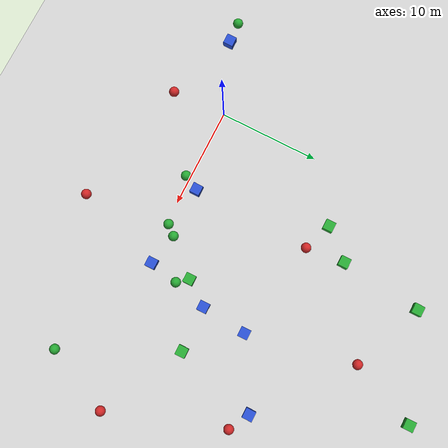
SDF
<sdf version="1.6">
 <world name="default">
  <light name="sun" type="directional">
   <pose>0 0 10 0 -0 0</pose>
   <diffuse>0.8 0.8 0.8 1</diffuse>
   <specular>0.1 0.1 0.1 1</specular>
   <attenuation>
    <range>1000</range>
    <constant>0.9</constant>
    <linear>0.01</linear>
    <quadratic>0.001</quadratic>
   </attenuation>
   <direction>-0.5 0.5 -1</direction>
  </light>
  <model name="ground_plane">
   <static>1</static>
   <link name="link">
    <collision name="collision">
     <geometry><plane><normal>0 0 1</normal><size>100 100</size></plane></geometry>
     <surface><friction><ode><mu>100</mu><mu2>50</mu2></ode></friction></surface>
    </collision>
    <visual name="visual">
     <cast_shadows>0</cast_shadows>
     <geometry><plane><normal>0 0 1</normal><size>100 100</size></plane></geometry>
     <material>
      <script><uri>file://media/materials/scripts/gazebo.material</uri><name>Gazebo/Grey</name></script>
     </material>
    </visual>
   </link>
  </model>
  <model name="unit_sphere_red_6">
   <pose>8.32090848177 13.1618066912 0.5 0 -0 0</pose>
   <link name="link">
    <inertial>
     <mass>1</mass>
     <inertia><ixx>0.1</ixx><ixy>0</ixy><ixz>0</ixz><iyy>0.1</iyy><iyz>0</iyz><izz>0.1</izz></inertia>
    </inertial>
    <collision name="collision"><geometry><sphere><radius>0.5</radius></sphere></geometry></collision>
    <visual name="visual">
     <geometry><sphere><radius>0.5</radius></sphere></geometry>
     <material>
      <script><name>Gazebo/Red</name><uri>file://media/materials/scripts/gazebo.material</uri></script>
     </material>
    </visual>
   </link>
  </model>
  <model name="unit_sphere_red_5">
   <pose>26.724746386 14.2678005844 0.5 0 -0 0</pose>
   <link name="link">
    <inertial>
     <mass>1</mass>
     <inertia><ixx>0.1</ixx><ixy>0</ixy><ixz>0</ixz><iyy>0.1</iyy><iyz>0</iyz><izz>0.1</izz></inertia>
    </inertial>
    <collision name="collision"><geometry><sphere><radius>0.5</radius></sphere></geometry></collision>
    <visual name="visual">
     <geometry><sphere><radius>0.5</radius></sphere></geometry>
     <material>
      <script><name>Gazebo/Red</name><uri>file://media/materials/scripts/gazebo.material</uri></script>
     </material>
    </visual>
   </link>
  </model>
  <model name="unit_sphere_red_4">
   <pose>16.0062812353 22.3296054313 0.5 0 -0 0</pose>
   <link name="link">
    <inertial>
     <mass>1</mass>
     <inertia><ixx>0.1</ixx><ixy>0</ixy><ixz>0</ixz><iyy>0.1</iyy><iyz>0</iyz><izz>0.1</izz></inertia>
    </inertial>
    <collision name="collision"><geometry><sphere><radius>0.5</radius></sphere></geometry></collision>
    <visual name="visual">
     <geometry><sphere><radius>0.5</radius></sphere></geometry>
     <material>
      <script><name>Gazebo/Red</name><uri>file://media/materials/scripts/gazebo.material</uri></script>
     </material>
    </visual>
   </link>
  </model>
  <model name="unit_sphere_red_3">
   <pose>30.6855881343 2.91026041171 0.5 0 -0 0</pose>
   <link name="link">
    <inertial>
     <mass>1</mass>
     <inertia><ixx>0.1</ixx><ixy>0</ixy><ixz>0</ixz><iyy>0.1</iyy><iyz>0</iyz><izz>0.1</izz></inertia>
    </inertial>
    <collision name="collision"><geometry><sphere><radius>0.5</radius></sphere></geometry></collision>
    <visual name="visual">
     <geometry><sphere><radius>0.5</radius></sphere></geometry>
     <material>
      <script><name>Gazebo/Red</name><uri>file://media/materials/scripts/gazebo.material</uri></script>
     </material>
    </visual>
   </link>
  </model>
  <model name="unit_sphere_red_2">
   <pose>13.3339241647 -8.17734306146 0.5 0 -0 0</pose>
   <link name="link">
    <inertial>
     <mass>1</mass>
     <inertia><ixx>0.1</ixx><ixy>0</ixy><ixz>0</ixz><iyy>0.1</iyy><iyz>0</iyz><izz>0.1</izz></inertia>
    </inertial>
    <collision name="collision"><geometry><sphere><radius>0.5</radius></sphere></geometry></collision>
    <visual name="visual">
     <geometry><sphere><radius>0.5</radius></sphere></geometry>
     <material>
      <script><name>Gazebo/Red</name><uri>file://media/materials/scripts/gazebo.material</uri></script>
     </material>
    </visual>
   </link>
  </model>
  <model name="unit_sphere_red_1">
   <pose>0.291144338183 -5.4296688525 0.5 0 -0 0</pose>
   <link name="link">
    <inertial>
     <mass>1</mass>
     <inertia><ixx>0.1</ixx><ixy>0</ixy><ixz>0</ixz><iyy>0.1</iyy><iyz>0</iyz><izz>0.1</izz></inertia>
    </inertial>
    <collision name="collision"><geometry><sphere><radius>0.5</radius></sphere></geometry></collision>
    <visual name="visual">
     <geometry><sphere><radius>0.5</radius></sphere></geometry>
     <material>
      <script><name>Gazebo/Red</name><uri>file://media/materials/scripts/gazebo.material</uri></script>
     </material>
    </visual>
   </link>
  </model>
  <model name="unit_box_green_6">
   <pose>5.41608356822 14.2049613543 0.329741 0 -0 0</pose>
   <link name="link">
    <inertial>
     <mass>1</mass>
     <inertia>
      <ixx>0.166667</ixx>
      <ixy>0</ixy>
      <ixz>0</ixz>
      <iyy>0.166667</iyy>
      <iyz>0</iyz>
      <izz>0.166667</izz>
     </inertia>
    </inertial>
    <collision name="collision"><geometry><box><size>1 1 0.999999</size></box></geometry></collision>
    <visual name="visual">
     <geometry><box><size>1 1 0.999999</size></box></geometry>
     <material>
      <script><name>Gazebo/Green</name><uri>file://media/materials/scripts/gazebo.material</uri></script>
     </material>
    </visual>
   </link>
  </model>
  <model name="unit_box_green_5">
   <pose>18.7906243101 28.931720916 0.329741 0 -0 0</pose>
   <link name="link">
    <inertial>
     <mass>1</mass>
     <inertia>
      <ixx>0.166667</ixx>
      <ixy>0</ixy>
      <ixz>0</ixz>
      <iyy>0.166667</iyy>
      <iyz>0</iyz>
      <izz>0.166667</izz>
     </inertia>
    </inertial>
    <collision name="collision"><geometry><box><size>1 1 0.999999</size></box></geometry></collision>
    <visual name="visual">
     <geometry><box><size>1 1 0.999999</size></box></geometry>
     <material>
      <script><name>Gazebo/Green</name><uri>file://media/materials/scripts/gazebo.material</uri></script>
     </material>
    </visual>
   </link>
  </model>
  <model name="unit_box_green_4">
   <pose>22.4247979385 7.11053588647 0.329741 0 -0 0</pose>
   <link name="link">
    <inertial>
     <mass>1</mass>
     <inertia>
      <ixx>0.166667</ixx>
      <ixy>0</ixy>
      <ixz>0</ixz>
      <iyy>0.166667</iyy>
      <iyz>0</iyz>
      <izz>0.166667</izz>
     </inertia>
    </inertial>
    <collision name="collision"><geometry><box><size>1 1 0.999999</size></box></geometry></collision>
    <visual name="visual">
     <geometry><box><size>1 1 0.999999</size></box></geometry>
     <material>
      <script><name>Gazebo/Green</name><uri>file://media/materials/scripts/gazebo.material</uri></script>
     </material>
    </visual>
   </link>
  </model>
  <model name="unit_box_green_3">
   <pose>7.91331185936 17.0417967054 0.329741 0 -0 0</pose>
   <link name="link">
    <inertial>
     <mass>1</mass>
     <inertia>
      <ixx>0.166667</ixx>
      <ixy>0</ixy>
      <ixz>0</ixz>
      <iyy>0.166667</iyy>
      <iyz>0</iyz>
      <izz>0.166667</izz>
     </inertia>
    </inertial>
    <collision name="collision"><geometry><box><size>1 1 0.999999</size></box></geometry></collision>
    <visual name="visual">
     <geometry><box><size>1 1 0.999999</size></box></geometry>
     <material>
      <script><name>Gazebo/Green</name><uri>file://media/materials/scripts/gazebo.material</uri></script>
     </material>
    </visual>
   </link>
  </model>
  <model name="unit_box_green_2">
   <pose>16.0891084874 4.58852091248 0.329741 0 -0 0</pose>
   <link name="link">
    <inertial>
     <mass>1</mass>
     <inertia>
      <ixx>0.166667</ixx>
      <ixy>0</ixy>
      <ixz>0</ixz>
      <iyy>0.166667</iyy>
      <iyz>0</iyz>
      <izz>0.166667</izz>
     </inertia>
    </inertial>
    <collision name="collision"><geometry><box><size>1 1 0.999999</size></box></geometry></collision>
    <visual name="visual">
     <geometry><box><size>1 1 0.999999</size></box></geometry>
     <material>
      <script><name>Gazebo/Green</name><uri>file://media/materials/scripts/gazebo.material</uri></script>
     </material>
    </visual>
   </link>
  </model>
  <model name="unit_box_green_1">
   <pose>8.81821449076 25.18910601 0.329741 0 -0 0</pose>
   <link name="link">
    <inertial>
     <mass>1</mass>
     <inertia>
      <ixx>0.166667</ixx>
      <ixy>0</ixy>
      <ixz>0</ixz>
      <iyy>0.166667</iyy>
      <iyz>0</iyz>
      <izz>0.166667</izz>
     </inertia>
    </inertial>
    <collision name="collision"><geometry><box><size>1 1 0.999999</size></box></geometry></collision>
    <visual name="visual">
     <geometry><box><size>1 1 0.999999</size></box></geometry>
     <material>
      <script><name>Gazebo/Green</name><uri>file://media/materials/scripts/gazebo.material</uri></script>
     </material>
    </visual>
   </link>
  </model>
  <model name="unit_sphere_green_6">
   <pose>27.6833065312 -3.63234417857 0.5 0 -0 0</pose>
   <link name="link">
    <inertial>
     <mass>1</mass>
     <inertia><ixx>0.1</ixx><ixy>0</ixy><ixz>0</ixz><iyy>0.1</iyy><iyz>0</iyz><izz>0.1</izz></inertia>
    </inertial>
    <collision name="collision"><geometry><sphere><radius>0.5</radius></sphere></geometry></collision>
    <visual name="visual">
     <geometry><sphere><radius>0.5</radius></sphere></geometry>
     <material>
      <script><name>Gazebo/Green</name><uri>file://media/materials/scripts/gazebo.material</uri></script>
     </material>
    </visual>
   </link>
  </model>
  <model name="unit_sphere_green_5">
   <pose>16.9457532915 3.55611196257 0.5 0 -0 0</pose>
   <link name="link">
    <inertial>
     <mass>1</mass>
     <inertia><ixx>0.1</ixx><ixy>0</ixy><ixz>0</ixz><iyy>0.1</iyy><iyz>0</iyz><izz>0.1</izz></inertia>
    </inertial>
    <collision name="collision"><geometry><sphere><radius>0.5</radius></sphere></geometry></collision>
    <visual name="visual">
     <geometry><sphere><radius>0.5</radius></sphere></geometry>
     <material>
      <script><name>Gazebo/Green</name><uri>file://media/materials/scripts/gazebo.material</uri></script>
     </material>
    </visual>
   </link>
  </model>
  <model name="unit_sphere_green_4">
   <pose>12.307411308 0.318836366247 0.5 0 -0 0</pose>
   <link name="link">
    <inertial>
     <mass>1</mass>
     <inertia><ixx>0.1</ixx><ixy>0</ixy><ixz>0</ixz><iyy>0.1</iyy><iyz>0</iyz><izz>0.1</izz></inertia>
    </inertial>
    <collision name="collision"><geometry><sphere><radius>0.5</radius></sphere></geometry></collision>
    <visual name="visual">
     <geometry><sphere><radius>0.5</radius></sphere></geometry>
     <material>
      <script><name>Gazebo/Green</name><uri>file://media/materials/scripts/gazebo.material</uri></script>
     </material>
    </visual>
   </link>
  </model>
  <model name="unit_sphere_green_3">
   <pose>7.30194480192 -0.401312612165 0.5 0 -0 0</pose>
   <link name="link">
    <inertial>
     <mass>1</mass>
     <inertia><ixx>0.1</ixx><ixy>0</ixy><ixz>0</ixz><iyy>0.1</iyy><iyz>0</iyz><izz>0.1</izz></inertia>
    </inertial>
    <collision name="collision"><geometry><sphere><radius>0.5</radius></sphere></geometry></collision>
    <visual name="visual">
     <geometry><sphere><radius>0.5</radius></sphere></geometry>
     <material>
      <script><name>Gazebo/Green</name><uri>file://media/materials/scripts/gazebo.material</uri></script>
     </material>
    </visual>
   </link>
  </model>
  <model name="unit_sphere_green_2">
   <pose>13.1320250373 1.28865375193 0.5 0 -0 0</pose>
   <link name="link">
    <inertial>
     <mass>1</mass>
     <inertia><ixx>0.1</ixx><ixy>0</ixy><ixz>0</ixz><iyy>0.1</iyy><iyz>0</iyz><izz>0.1</izz></inertia>
    </inertial>
    <collision name="collision"><geometry><sphere><radius>0.5</radius></sphere></geometry></collision>
    <visual name="visual">
     <geometry><sphere><radius>0.5</radius></sphere></geometry>
     <material>
      <script><name>Gazebo/Green</name><uri>file://media/materials/scripts/gazebo.material</uri></script>
     </material>
    </visual>
   </link>
  </model>
  <model name="unit_sphere_green_1">
   <pose>-9.00166899203 -3.03831891134 0.5 0 -0 0</pose>
   <link name="link">
    <inertial>
     <mass>1</mass>
     <inertia><ixx>0.1</ixx><ixy>0</ixy><ixz>0</ixz><iyy>0.1</iyy><iyz>0</iyz><izz>0.1</izz></inertia>
    </inertial>
    <collision name="collision"><geometry><sphere><radius>0.5</radius></sphere></geometry></collision>
    <visual name="visual">
     <geometry><sphere><radius>0.5</radius></sphere></geometry>
     <material>
      <script><name>Gazebo/Green</name><uri>file://media/materials/scripts/gazebo.material</uri></script>
     </material>
    </visual>
   </link>
  </model>
  <model name="unit_box_blue_6">
   <pose>8.0575709687 1.13263355677 0.329741 0 -0 0</pose>
   <link name="link">
    <inertial>
     <mass>1</mass>
     <inertia>
      <ixx>0.166667</ixx>
      <ixy>0</ixy>
      <ixz>0</ixz>
      <iyy>0.166667</iyy>
      <iyz>0</iyz>
      <izz>0.166667</izz>
     </inertia>
    </inertial>
    <collision name="collision"><geometry><box><size>1 1 0.999999</size></box></geometry></collision>
    <visual name="visual">
     <geometry><box><size>1 1 0.999999</size></box></geometry>
     <material>
      <script><name>Gazebo/Blue</name><uri>file://media/materials/scripts/gazebo.material</uri></script>
     </material>
    </visual>
   </link>
  </model>
  <model name="unit_box_blue_5">
   <pose>18.2455372018 11.5567462029 0.329741 0 -0 0</pose>
   <link name="link">
    <inertial>
     <mass>1</mass>
     <inertia>
      <ixx>0.166667</ixx>
      <ixy>0</ixy>
      <ixz>0</ixz>
      <iyy>0.166667</iyy>
      <iyz>0</iyz>
      <izz>0.166667</izz>
     </inertia>
    </inertial>
    <collision name="collision"><geometry><box><size>1 1 0.999999</size></box></geometry></collision>
    <visual name="visual">
     <geometry><box><size>1 1 0.999999</size></box></geometry>
     <material>
      <script><name>Gazebo/Blue</name><uri>file://media/materials/scripts/gazebo.material</uri></script>
     </material>
    </visual>
   </link>
  </model>
  <model name="unit_box_blue_4">
   <pose>24.6824825212 15.3344738494 0.329741 0 -0 0</pose>
   <link name="link">
    <inertial>
     <mass>1</mass>
     <inertia>
      <ixx>0.166667</ixx>
      <ixy>0</ixy>
      <ixz>0</ixz>
      <iyy>0.166667</iyy>
      <iyz>0</iyz>
      <izz>0.166667</izz>
     </inertia>
    </inertial>
    <collision name="collision"><geometry><box><size>1 1 0.999999</size></box></geometry></collision>
    <visual name="visual">
     <geometry><box><size>1 1 0.999999</size></box></geometry>
     <material>
      <script><name>Gazebo/Blue</name><uri>file://media/materials/scripts/gazebo.material</uri></script>
     </material>
    </visual>
   </link>
  </model>
  <model name="unit_box_blue_3">
   <pose>17.8255602357 6.98321714857 0.329741 0 -0 0</pose>
   <link name="link">
    <inertial>
     <mass>1</mass>
     <inertia>
      <ixx>0.166667</ixx>
      <ixy>0</ixy>
      <ixz>0</ixz>
      <iyy>0.166667</iyy>
      <iyz>0</iyz>
      <izz>0.166667</izz>
     </inertia>
    </inertial>
    <collision name="collision"><geometry><box><size>1 1 0.999999</size></box></geometry></collision>
    <visual name="visual">
     <geometry><box><size>1 1 0.999999</size></box></geometry>
     <material>
      <script><name>Gazebo/Blue</name><uri>file://media/materials/scripts/gazebo.material</uri></script>
     </material>
    </visual>
   </link>
  </model>
  <model name="unit_box_blue_2">
   <pose>16.359824852 0.639960600224 0.329741 0 -0 0</pose>
   <link name="link">
    <inertial>
     <mass>1</mass>
     <inertia>
      <ixx>0.166667</ixx>
      <ixy>0</ixy>
      <ixz>0</ixz>
      <iyy>0.166667</iyy>
      <iyz>0</iyz>
      <izz>0.166667</izz>
     </inertia>
    </inertial>
    <collision name="collision"><geometry><box><size>1 1 0.999999</size></box></geometry></collision>
    <visual name="visual">
     <geometry><box><size>1 1 0.999999</size></box></geometry>
     <material>
      <script><name>Gazebo/Blue</name><uri>file://media/materials/scripts/gazebo.material</uri></script>
     </material>
    </visual>
   </link>
  </model>
  <model name="unit_box_blue_1">
   <pose>-6.95325027971 -2.90776014574 0.329741 0 -0 0</pose>
   <link name="link">
    <inertial>
     <mass>1</mass>
     <inertia>
      <ixx>0.166667</ixx>
      <ixy>0</ixy>
      <ixz>0</ixz>
      <iyy>0.166667</iyy>
      <iyz>0</iyz>
      <izz>0.166667</izz>
     </inertia>
    </inertial>
    <collision name="collision"><geometry><box><size>1 1 0.999999</size></box></geometry></collision>
    <visual name="visual">
     <geometry><box><size>1 1 0.999999</size></box></geometry>
     <material>
      <script><name>Gazebo/Blue</name><uri>file://media/materials/scripts/gazebo.material</uri></script>
     </material>
    </visual>
   </link>
  </model>
  <gravity>0 0 -9.8</gravity>
  <magnetic_field>6e-06 2.3e-05 -4.2e-05</magnetic_field>
  <atmosphere type="adiabatic"/>
  <physics default="0" name="default_physics" type="ode">
   <max_step_size>0.001</max_step_size>
   <real_time_factor>1</real_time_factor>
   <real_time_update_rate>1000</real_time_update_rate>
  </physics>
  <scene><ambient>0.4 0.4 0.4 1</ambient><background>0.7 0.7 0.7 1</background><shadows>1</shadows></scene>
  <spherical_coordinates>
   <surface_model>EARTH_WGS84</surface_model>
   <latitude_deg>0</latitude_deg>
   <longitude_deg>0</longitude_deg>
   <elevation>0</elevation>
   <heading_deg>0</heading_deg>
  </spherical_coordinates>
 </world>
</sdf>
